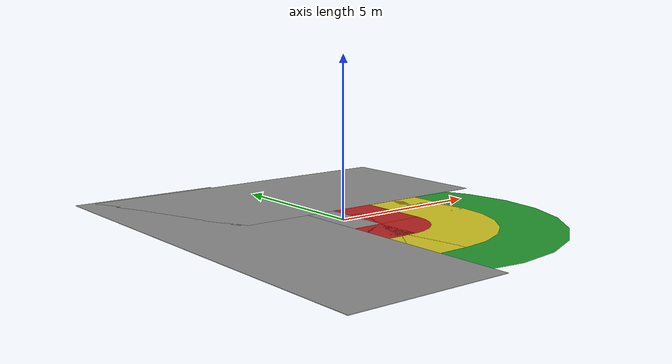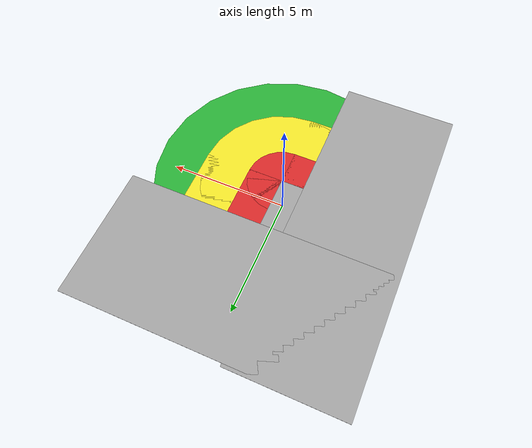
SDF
<?xml version="1.0"?>
<sdf version="1.6">
  <model name="Color Tutorial Model">
    <static>true</static>

   <link name="darngerous_link">
    <visual name ="main_rectangele">
           <pose> 0 0 0 0 0 0</pose>
           <geometry>
               <box>
                   <size> 1 2.27 0.015</size>
                </box>
            </geometry>
        <material>
            <script>
            <uri>file://media/materials/scripts/gazebo.material</uri>
            <name>Gazebo/Grey</name>
          </script>
        </material>
      </visual>
    <!--Here we set the warning zone to be d1=1.5m so the y=-1.135-1.5/2=-1.885      -->
     <visual name ="side_rectangele">
           <pose> 0 -1.885 0 0 0 0</pose>
           <geometry>
               <box>
                   <size> 1 1.5 0.01</size>
                </box>
            </geometry>
        <material> <!-- Red material -->
          <script>
            <uri>file://media/materials/scripts/gazebo.material</uri>
            <name>Gazebo/Red</name>
          </script>
        </material> <!-- End Red material -->
      </visual>

          <!--Here we set the warning zone to be d1=1.5m so the x=0.5+1.5/2=1.25      -->
     <visual name ="front_rectangele">
           <pose> 1.25 0 0 0 0 0</pose>
           <geometry>
               <box>
                   <size> 1.5 2.27 .01</size>
                </box>
            </geometry>
        <material> <!-- Red material -->
       <script>
            <uri>file://media/materials/scripts/gazebo.material</uri>
            <name>Gazebo/Red</name>
          </script>
        </material> <!-- End Red material -->
      </visual>

      <visual name="corner_circle">
        <pose>0.5 -1.135 0 0 0 0</pose>
        <geometry>
          <cylinder>
              <radius>1.5</radius>
              <length>0.01</length>
            </cylinder>
        </geometry>
            <material> <!-- Red material -->
       <script>
            <uri>file://media/materials/scripts/gazebo.material</uri>
            <name>Gazebo/Red</name>
          </script>
        </material> <!-- End Red material -->
      </visual>

    </link>

       <link name="warn_link">
           <visual name ="side_rectangele">
           <pose> 0 -3.635 0 0 0 0</pose>
           <geometry>
               <box>
                   <size> 1 2 0.001</size>
                </box>
            </geometry>
            <material> <!-- Yellow material -->
                   <script>
            <uri>file://media/materials/scripts/gazebo.material</uri>
            <name>Gazebo/Yellow</name>
          </script>
            </material> <!-- End wheel material -->
      </visual>

          <!--Here we set the warning zone to be d2=2m so the x=2+2/2      -->
     <visual name ="front_rectangele">
           <pose> 3 0 0 0 0 0</pose>
           <geometry>
               <box>
                   <size> 2 2.27 0.001</size>
                </box>
            </geometry>
            <material> <!-- Yellow material -->
        <script>
            <uri>file://media/materials/scripts/gazebo.material</uri>
            <name>Gazebo/Yellow</name>
          </script>
            </material> <!-- End wheel material -->
      </visual>

      <visual name="corner_circle">
        <pose>0.5 -1.135 0 0 0 0</pose>
        <geometry>
          <cylinder>
              <radius>3.5</radius>
              <length>0.001</length>
            </cylinder>
        </geometry>
            <material> <!-- Yellow material -->
       <script>
            <uri>file://media/materials/scripts/gazebo.material</uri>
            <name>Gazebo/Yellow</name>
          </script>
            </material> <!-- End wheel material -->
      </visual>
      </link>
      <link name="patch_link1">

           <visual name ="patch_rectangele1">
           <pose> 0.5 4 0 0 0 0</pose>
           <geometry>
               <box>
                   <size> 12 5.73 0.015</size>
                </box>
            </geometry>
            <material> <!-- Yellow material -->
        <script>
            <uri>file://media/materials/scripts/gazebo.material</uri>
            <name>Gazebo/Grey</name>
          </script>
            </material> <!-- End wheel material -->
      </visual>
    </link>
        <link name="patch_link2">
        <visual name ="patch_rectangele2">
           <pose> -3 0 0 0 0 0</pose>
           <geometry>
               <box>
                   <size> 5 14 0.015</size>
                </box>
            </geometry>
            <material> <!-- Yellow material -->
        <script>
            <uri>file://media/materials/scripts/gazebo.material</uri>
            <name>Gazebo/Grey</name>
          </script>
            </material> <!-- End wheel material -->
      </visual>
    </link>
    <link name="safe_link">
    <visual name="corner_circle">
        <pose>0.5 -1.135 0 0 0 0</pose>
        <geometry>
          <cylinder>
              <radius>5.5</radius>
              <length>0.0001</length>
            </cylinder>
        </geometry>
            <material> <!-- Yellow material -->
       <script>
            <uri>file://media/materials/scripts/gazebo.material</uri>
            <name>Gazebo/Green</name>
          </script>
            </material> <!-- End wheel material -->
      </visual>
    </link>

    </model>
</sdf>
